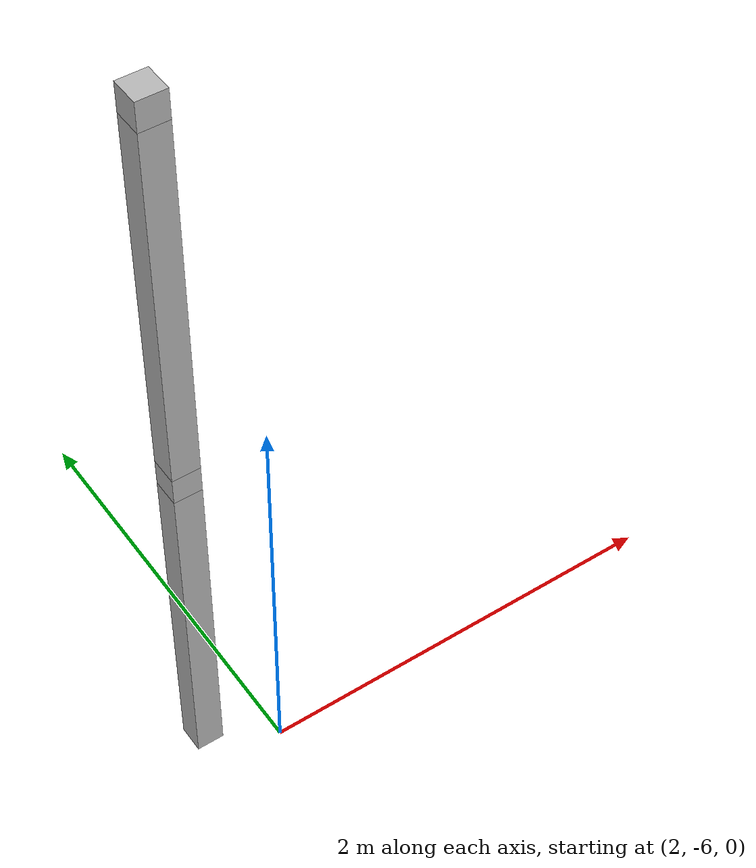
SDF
<sdf version="1.7">
 <world name="default">
  <model name="orthogonal_747_2.000.15_TS">
   <static>1</static>
   <link name="u_link_1_0_4">
    <inertial>
     <mass>1</mass>
     <inertia>
      <ixx>0.166667</ixx>
      <ixy>0</ixy>
      <ixz>0</ixz>
      <iyy>0.166667</iyy>
      <iyz>0</iyz>
      <izz>0.166667</izz>
     </inertia>
    </inertial>
    <pose>8.6 0 3.225 0 -0 0</pose>
    <visual name="visual_0">
     <laser_retro>876</laser_retro>
     <geometry><box><size>0.15 1e-06 0.15</size></box></geometry>
     <material>
      <script><name>Gazebo/Grey</name><uri>file://media/materials/scripts/gazebo.material</uri></script>
      <shader type="pixel"><normal_map>__default__</normal_map></shader>
      <ambient>0.678 0.498 0.659 1</ambient>
      <diffuse>0.7 0.7 0.7 1</diffuse>
      <specular>0.01 0.01 0.01 1</specular>
      <emissive>0 0 0 1</emissive>
     </material>
     <pose>0 -0.075 0 0 -0 0</pose>
     <transparency>1</transparency>
    </visual>
    <visual name="visual_1">
     <laser_retro>877</laser_retro>
     <geometry><box><size>0.15 1e-06 0.15</size></box></geometry>
     <material>
      <script><name>Gazebo/Grey</name><uri>file://media/materials/scripts/gazebo.material</uri></script>
      <shader type="pixel"><normal_map>__default__</normal_map></shader>
      <ambient>0.447 0.624 0.812 1</ambient>
      <diffuse>0.7 0.7 0.7 1</diffuse>
      <specular>0.01 0.01 0.01 1</specular>
      <emissive>0 0 0 1</emissive>
     </material>
     <pose>0 0.075 0 0 -0 0</pose>
     <transparency>1</transparency>
    </visual>
    <visual name="visual_2">
     <laser_retro>878</laser_retro>
     <geometry><box><size>0.15 0.15 1e-06</size></box></geometry>
     <material>
      <script><name>Gazebo/Grey</name><uri>file://media/materials/scripts/gazebo.material</uri></script>
      <shader type="pixel"><normal_map>__default__</normal_map></shader>
      <ambient>0.988 0.686 0.243 1</ambient>
      <diffuse>0.7 0.7 0.7 1</diffuse>
      <specular>0.01 0.01 0.01 1</specular>
      <emissive>0 0 0 1</emissive>
     </material>
     <pose>0 0 -0.075 0 -0 0</pose>
     <transparency>1</transparency>
    </visual>
    <visual name="visual_3">
     <laser_retro>879</laser_retro>
     <geometry><box><size>1e-06 0.15 0.15</size></box></geometry>
     <material>
      <script><name>Gazebo/Grey</name><uri>file://media/materials/scripts/gazebo.material</uri></script>
      <shader type="pixel"><normal_map>__default__</normal_map></shader>
      <ambient>0.988 0.914 0.31 1</ambient>
      <diffuse>0.7 0.7 0.7 1</diffuse>
      <specular>0.01 0.01 0.01 1</specular>
      <emissive>0 0 0 1</emissive>
     </material>
     <pose>0.075 0 0 0 -0 0</pose>
     <transparency>1</transparency>
    </visual>
    <visual name="visual_4">
     <laser_retro>880</laser_retro>
     <geometry><box><size>0.15 0.15 1e-06</size></box></geometry>
     <material>
      <script><name>Gazebo/Grey</name><uri>file://media/materials/scripts/gazebo.material</uri></script>
      <shader type="pixel"><normal_map>__default__</normal_map></shader>
      <ambient>0.937 0.161 0.161 1</ambient>
      <diffuse>0.7 0.7 0.7 1</diffuse>
      <specular>0.01 0.01 0.01 1</specular>
      <emissive>0 0 0 1</emissive>
     </material>
     <pose>0 0 0.075 0 -0 0</pose>
     <transparency>1</transparency>
    </visual>
    <visual name="visual_5">
     <laser_retro>881</laser_retro>
     <geometry><box><size>1e-06 0.15 0.15</size></box></geometry>
     <material>
      <script><name>Gazebo/Grey</name><uri>file://media/materials/scripts/gazebo.material</uri></script>
      <shader type="pixel"><normal_map>__default__</normal_map></shader>
      <ambient>0.541 0.886 0.204 1</ambient>
      <diffuse>0.7 0.7 0.7 1</diffuse>
      <specular>0.01 0.01 0.01 1</specular>
      <emissive>0 0 0 1</emissive>
     </material>
     <pose>-0.075 0 0 0 -0 0</pose>
     <transparency>1</transparency>
    </visual>
    <visual name="visual_texture">
     <geometry><box><size>0.149985 0.149985 0.149985</size></box></geometry>
     <material>
      <script>
       <uri>model://BASE_MODELS/simple_block_v2_textured/materials/scripts</uri>
       <uri>model://BASE_MODELS/simple_block_v2_textured/materials/textures</uri>
       <name>metal</name>
      </script>
     </material>
     <laser_retro>882</laser_retro>
    </visual>
    <collision name="collision">
     <geometry><box><size>0.15 0.15 0.15</size></box></geometry>
     <surface>
      <friction>
       <ode><mu>1</mu><mu2>1</mu2><fdir1>0 0 0</fdir1><slip1>0</slip1><slip2>0</slip2></ode>
       <torsional>
        <coefficient>1</coefficient>
        <patch_radius>0</patch_radius>
        <surface_radius>0</surface_radius>
        <use_patch_radius>1</use_patch_radius>
        <ode><slip>0</slip></ode>
       </torsional>
      </friction>
      <bounce><restitution_coefficient>0</restitution_coefficient><threshold>1e+06</threshold></bounce>
      <contact>
       <collide_without_contact>0</collide_without_contact>
       <collide_without_contact_bitmask>1</collide_without_contact_bitmask>
       <collide_bitmask>1</collide_bitmask>
       <ode>
        <soft_cfm>0</soft_cfm>
        <soft_erp>0.2</soft_erp>
        <kp>1e+13</kp>
        <kd>1</kd>
        <max_vel>0.01</max_vel>
        <min_depth>0</min_depth>
       </ode>
       <bullet>
        <split_impulse>1</split_impulse>
        <split_impulse_penetration_threshold>-0.01</split_impulse_penetration_threshold>
        <soft_cfm>0</soft_cfm>
        <soft_erp>0.2</soft_erp>
        <kp>1e+13</kp>
        <kd>1</kd>
       </bullet>
      </contact>
     </surface>
    </collision>
   </link>
   <link name="z_link_1_0_4">
    <inertial>
     <mass>1</mass>
     <inertia>
      <ixx>0.166667</ixx>
      <ixy>0</ixy>
      <ixz>0</ixz>
      <iyy>0.166667</iyy>
      <iyz>0</iyz>
      <izz>0.166667</izz>
     </inertia>
    </inertial>
    <pose>8.6 0 2.15 0 -0 0</pose>
    <visual name="visual_0">
     <laser_retro>883</laser_retro>
     <geometry><box><size>0.15 1e-06 2</size></box></geometry>
     <material>
      <script><name>Gazebo/Grey</name><uri>file://media/materials/scripts/gazebo.material</uri></script>
      <shader type="pixel"><normal_map>__default__</normal_map></shader>
      <ambient>0.678 0.498 0.659 1</ambient>
      <diffuse>0.7 0.7 0.7 1</diffuse>
      <specular>0.01 0.01 0.01 1</specular>
      <emissive>0 0 0 1</emissive>
     </material>
     <pose>0 -0.075 0 0 -0 0</pose>
     <transparency>1</transparency>
    </visual>
    <visual name="visual_1">
     <laser_retro>884</laser_retro>
     <geometry><box><size>0.15 1e-06 2</size></box></geometry>
     <material>
      <script><name>Gazebo/Grey</name><uri>file://media/materials/scripts/gazebo.material</uri></script>
      <shader type="pixel"><normal_map>__default__</normal_map></shader>
      <ambient>0.447 0.624 0.812 1</ambient>
      <diffuse>0.7 0.7 0.7 1</diffuse>
      <specular>0.01 0.01 0.01 1</specular>
      <emissive>0 0 0 1</emissive>
     </material>
     <pose>0 0.075 0 0 -0 0</pose>
     <transparency>1</transparency>
    </visual>
    <visual name="visual_2">
     <laser_retro>885</laser_retro>
     <geometry><box><size>0.15 0.15 1e-06</size></box></geometry>
     <material>
      <script><name>Gazebo/Grey</name><uri>file://media/materials/scripts/gazebo.material</uri></script>
      <shader type="pixel"><normal_map>__default__</normal_map></shader>
      <ambient>0.988 0.686 0.243 1</ambient>
      <diffuse>0.7 0.7 0.7 1</diffuse>
      <specular>0.01 0.01 0.01 1</specular>
      <emissive>0 0 0 1</emissive>
     </material>
     <pose>0 0 -1 0 -0 0</pose>
     <transparency>1</transparency>
    </visual>
    <visual name="visual_3">
     <laser_retro>886</laser_retro>
     <geometry><box><size>1e-06 0.15 2</size></box></geometry>
     <material>
      <script><name>Gazebo/Grey</name><uri>file://media/materials/scripts/gazebo.material</uri></script>
      <shader type="pixel"><normal_map>__default__</normal_map></shader>
      <ambient>0.988 0.914 0.31 1</ambient>
      <diffuse>0.7 0.7 0.7 1</diffuse>
      <specular>0.01 0.01 0.01 1</specular>
      <emissive>0 0 0 1</emissive>
     </material>
     <pose>0.075 0 0 0 -0 0</pose>
     <transparency>1</transparency>
    </visual>
    <visual name="visual_4">
     <laser_retro>887</laser_retro>
     <geometry><box><size>0.15 0.15 1e-06</size></box></geometry>
     <material>
      <script><name>Gazebo/Grey</name><uri>file://media/materials/scripts/gazebo.material</uri></script>
      <shader type="pixel"><normal_map>__default__</normal_map></shader>
      <ambient>0.937 0.161 0.161 1</ambient>
      <diffuse>0.7 0.7 0.7 1</diffuse>
      <specular>0.01 0.01 0.01 1</specular>
      <emissive>0 0 0 1</emissive>
     </material>
     <pose>0 0 1 0 -0 0</pose>
     <transparency>1</transparency>
    </visual>
    <visual name="visual_5">
     <laser_retro>888</laser_retro>
     <geometry><box><size>1e-06 0.15 2</size></box></geometry>
     <material>
      <script><name>Gazebo/Grey</name><uri>file://media/materials/scripts/gazebo.material</uri></script>
      <shader type="pixel"><normal_map>__default__</normal_map></shader>
      <ambient>0.541 0.886 0.204 1</ambient>
      <diffuse>0.7 0.7 0.7 1</diffuse>
      <specular>0.01 0.01 0.01 1</specular>
      <emissive>0 0 0 1</emissive>
     </material>
     <pose>-0.075 0 0 0 -0 0</pose>
     <transparency>1</transparency>
    </visual>
    <visual name="visual_texture">
     <geometry><box><size>0.149985 0.149985 1.9998</size></box></geometry>
     <material>
      <script>
       <uri>model://BASE_MODELS/simple_block_v2_textured/materials/scripts</uri>
       <uri>model://BASE_MODELS/simple_block_v2_textured/materials/textures</uri>
       <name>metal</name>
      </script>
     </material>
     <laser_retro>889</laser_retro>
    </visual>
    <collision name="collision">
     <geometry><box><size>0.15 0.15 2</size></box></geometry>
     <surface>
      <friction>
       <ode><mu>1</mu><mu2>1</mu2><fdir1>0 0 0</fdir1><slip1>0</slip1><slip2>0</slip2></ode>
       <torsional>
        <coefficient>1</coefficient>
        <patch_radius>0</patch_radius>
        <surface_radius>0</surface_radius>
        <use_patch_radius>1</use_patch_radius>
        <ode><slip>0</slip></ode>
       </torsional>
      </friction>
      <bounce><restitution_coefficient>0</restitution_coefficient><threshold>1e+06</threshold></bounce>
      <contact>
       <collide_without_contact>0</collide_without_contact>
       <collide_without_contact_bitmask>1</collide_without_contact_bitmask>
       <collide_bitmask>1</collide_bitmask>
       <ode>
        <soft_cfm>0</soft_cfm>
        <soft_erp>0.2</soft_erp>
        <kp>1e+13</kp>
        <kd>1</kd>
        <max_vel>0.01</max_vel>
        <min_depth>0</min_depth>
       </ode>
       <bullet>
        <split_impulse>1</split_impulse>
        <split_impulse_penetration_threshold>-0.01</split_impulse_penetration_threshold>
        <soft_cfm>0</soft_cfm>
        <soft_erp>0.2</soft_erp>
        <kp>1e+13</kp>
        <kd>1</kd>
       </bullet>
      </contact>
     </surface>
    </collision>
   </link>
   <link name="u_link_2_0_4">
    <inertial>
     <mass>1</mass>
     <inertia>
      <ixx>0.166667</ixx>
      <ixy>0</ixy>
      <ixz>0</ixz>
      <iyy>0.166667</iyy>
      <iyz>0</iyz>
      <izz>0.166667</izz>
     </inertia>
    </inertial>
    <pose>8.6 0 5.375 0 -0 0</pose>
    <visual name="visual_0">
     <laser_retro>1779</laser_retro>
     <geometry><box><size>0.15 1e-06 0.15</size></box></geometry>
     <material>
      <script><name>Gazebo/Grey</name><uri>file://media/materials/scripts/gazebo.material</uri></script>
      <shader type="pixel"><normal_map>__default__</normal_map></shader>
      <ambient>0.678 0.498 0.659 1</ambient>
      <diffuse>0.7 0.7 0.7 1</diffuse>
      <specular>0.01 0.01 0.01 1</specular>
      <emissive>0 0 0 1</emissive>
     </material>
     <pose>0 -0.075 0 0 -0 0</pose>
     <transparency>1</transparency>
    </visual>
    <visual name="visual_1">
     <laser_retro>1780</laser_retro>
     <geometry><box><size>0.15 1e-06 0.15</size></box></geometry>
     <material>
      <script><name>Gazebo/Grey</name><uri>file://media/materials/scripts/gazebo.material</uri></script>
      <shader type="pixel"><normal_map>__default__</normal_map></shader>
      <ambient>0.447 0.624 0.812 1</ambient>
      <diffuse>0.7 0.7 0.7 1</diffuse>
      <specular>0.01 0.01 0.01 1</specular>
      <emissive>0 0 0 1</emissive>
     </material>
     <pose>0 0.075 0 0 -0 0</pose>
     <transparency>1</transparency>
    </visual>
    <visual name="visual_2">
     <laser_retro>1781</laser_retro>
     <geometry><box><size>0.15 0.15 1e-06</size></box></geometry>
     <material>
      <script><name>Gazebo/Grey</name><uri>file://media/materials/scripts/gazebo.material</uri></script>
      <shader type="pixel"><normal_map>__default__</normal_map></shader>
      <ambient>0.988 0.686 0.243 1</ambient>
      <diffuse>0.7 0.7 0.7 1</diffuse>
      <specular>0.01 0.01 0.01 1</specular>
      <emissive>0 0 0 1</emissive>
     </material>
     <pose>0 0 -0.075 0 -0 0</pose>
     <transparency>1</transparency>
    </visual>
    <visual name="visual_3">
     <laser_retro>1782</laser_retro>
     <geometry><box><size>1e-06 0.15 0.15</size></box></geometry>
     <material>
      <script><name>Gazebo/Grey</name><uri>file://media/materials/scripts/gazebo.material</uri></script>
      <shader type="pixel"><normal_map>__default__</normal_map></shader>
      <ambient>0.988 0.914 0.31 1</ambient>
      <diffuse>0.7 0.7 0.7 1</diffuse>
      <specular>0.01 0.01 0.01 1</specular>
      <emissive>0 0 0 1</emissive>
     </material>
     <pose>0.075 0 0 0 -0 0</pose>
     <transparency>1</transparency>
    </visual>
    <visual name="visual_4">
     <laser_retro>1783</laser_retro>
     <geometry><box><size>0.15 0.15 1e-06</size></box></geometry>
     <material>
      <script><name>Gazebo/Grey</name><uri>file://media/materials/scripts/gazebo.material</uri></script>
      <shader type="pixel"><normal_map>__default__</normal_map></shader>
      <ambient>0.937 0.161 0.161 1</ambient>
      <diffuse>0.7 0.7 0.7 1</diffuse>
      <specular>0.01 0.01 0.01 1</specular>
      <emissive>0 0 0 1</emissive>
     </material>
     <pose>0 0 0.075 0 -0 0</pose>
     <transparency>1</transparency>
    </visual>
    <visual name="visual_5">
     <laser_retro>1784</laser_retro>
     <geometry><box><size>1e-06 0.15 0.15</size></box></geometry>
     <material>
      <script><name>Gazebo/Grey</name><uri>file://media/materials/scripts/gazebo.material</uri></script>
      <shader type="pixel"><normal_map>__default__</normal_map></shader>
      <ambient>0.541 0.886 0.204 1</ambient>
      <diffuse>0.7 0.7 0.7 1</diffuse>
      <specular>0.01 0.01 0.01 1</specular>
      <emissive>0 0 0 1</emissive>
     </material>
     <pose>-0.075 0 0 0 -0 0</pose>
     <transparency>1</transparency>
    </visual>
    <visual name="visual_texture">
     <geometry><box><size>0.149985 0.149985 0.149985</size></box></geometry>
     <material>
      <script>
       <uri>model://BASE_MODELS/simple_block_v2_textured/materials/scripts</uri>
       <uri>model://BASE_MODELS/simple_block_v2_textured/materials/textures</uri>
       <name>metal</name>
      </script>
     </material>
     <laser_retro>1785</laser_retro>
    </visual>
    <collision name="collision">
     <geometry><box><size>0.15 0.15 0.15</size></box></geometry>
     <surface>
      <friction>
       <ode><mu>1</mu><mu2>1</mu2><fdir1>0 0 0</fdir1><slip1>0</slip1><slip2>0</slip2></ode>
       <torsional>
        <coefficient>1</coefficient>
        <patch_radius>0</patch_radius>
        <surface_radius>0</surface_radius>
        <use_patch_radius>1</use_patch_radius>
        <ode><slip>0</slip></ode>
       </torsional>
      </friction>
      <bounce><restitution_coefficient>0</restitution_coefficient><threshold>1e+06</threshold></bounce>
      <contact>
       <collide_without_contact>0</collide_without_contact>
       <collide_without_contact_bitmask>1</collide_without_contact_bitmask>
       <collide_bitmask>1</collide_bitmask>
       <ode>
        <soft_cfm>0</soft_cfm>
        <soft_erp>0.2</soft_erp>
        <kp>1e+13</kp>
        <kd>1</kd>
        <max_vel>0.01</max_vel>
        <min_depth>0</min_depth>
       </ode>
       <bullet>
        <split_impulse>1</split_impulse>
        <split_impulse_penetration_threshold>-0.01</split_impulse_penetration_threshold>
        <soft_cfm>0</soft_cfm>
        <soft_erp>0.2</soft_erp>
        <kp>1e+13</kp>
        <kd>1</kd>
       </bullet>
      </contact>
     </surface>
    </collision>
   </link>
   <link name="z_link_2_0_4">
    <inertial>
     <mass>1</mass>
     <inertia>
      <ixx>0.166667</ixx>
      <ixy>0</ixy>
      <ixz>0</ixz>
      <iyy>0.166667</iyy>
      <iyz>0</iyz>
      <izz>0.166667</izz>
     </inertia>
    </inertial>
    <pose>8.6 0 4.3 0 -0 0</pose>
    <visual name="visual_0">
     <laser_retro>1786</laser_retro>
     <geometry><box><size>0.15 1e-06 2</size></box></geometry>
     <material>
      <script><name>Gazebo/Grey</name><uri>file://media/materials/scripts/gazebo.material</uri></script>
      <shader type="pixel"><normal_map>__default__</normal_map></shader>
      <ambient>0.678 0.498 0.659 1</ambient>
      <diffuse>0.7 0.7 0.7 1</diffuse>
      <specular>0.01 0.01 0.01 1</specular>
      <emissive>0 0 0 1</emissive>
     </material>
     <pose>0 -0.075 0 0 -0 0</pose>
     <transparency>1</transparency>
    </visual>
    <visual name="visual_1">
     <laser_retro>1787</laser_retro>
     <geometry><box><size>0.15 1e-06 2</size></box></geometry>
     <material>
      <script><name>Gazebo/Grey</name><uri>file://media/materials/scripts/gazebo.material</uri></script>
      <shader type="pixel"><normal_map>__default__</normal_map></shader>
      <ambient>0.447 0.624 0.812 1</ambient>
      <diffuse>0.7 0.7 0.7 1</diffuse>
      <specular>0.01 0.01 0.01 1</specular>
      <emissive>0 0 0 1</emissive>
     </material>
     <pose>0 0.075 0 0 -0 0</pose>
     <transparency>1</transparency>
    </visual>
    <visual name="visual_2">
     <laser_retro>1788</laser_retro>
     <geometry><box><size>0.15 0.15 1e-06</size></box></geometry>
     <material>
      <script><name>Gazebo/Grey</name><uri>file://media/materials/scripts/gazebo.material</uri></script>
      <shader type="pixel"><normal_map>__default__</normal_map></shader>
      <ambient>0.988 0.686 0.243 1</ambient>
      <diffuse>0.7 0.7 0.7 1</diffuse>
      <specular>0.01 0.01 0.01 1</specular>
      <emissive>0 0 0 1</emissive>
     </material>
     <pose>0 0 -1 0 -0 0</pose>
     <transparency>1</transparency>
    </visual>
    <visual name="visual_3">
     <laser_retro>1789</laser_retro>
     <geometry><box><size>1e-06 0.15 2</size></box></geometry>
     <material>
      <script><name>Gazebo/Grey</name><uri>file://media/materials/scripts/gazebo.material</uri></script>
      <shader type="pixel"><normal_map>__default__</normal_map></shader>
      <ambient>0.988 0.914 0.31 1</ambient>
      <diffuse>0.7 0.7 0.7 1</diffuse>
      <specular>0.01 0.01 0.01 1</specular>
      <emissive>0 0 0 1</emissive>
     </material>
     <pose>0.075 0 0 0 -0 0</pose>
     <transparency>1</transparency>
    </visual>
    <visual name="visual_4">
     <laser_retro>1790</laser_retro>
     <geometry><box><size>0.15 0.15 1e-06</size></box></geometry>
     <material>
      <script><name>Gazebo/Grey</name><uri>file://media/materials/scripts/gazebo.material</uri></script>
      <shader type="pixel"><normal_map>__default__</normal_map></shader>
      <ambient>0.937 0.161 0.161 1</ambient>
      <diffuse>0.7 0.7 0.7 1</diffuse>
      <specular>0.01 0.01 0.01 1</specular>
      <emissive>0 0 0 1</emissive>
     </material>
     <pose>0 0 1 0 -0 0</pose>
     <transparency>1</transparency>
    </visual>
    <visual name="visual_5">
     <laser_retro>1791</laser_retro>
     <geometry><box><size>1e-06 0.15 2</size></box></geometry>
     <material>
      <script><name>Gazebo/Grey</name><uri>file://media/materials/scripts/gazebo.material</uri></script>
      <shader type="pixel"><normal_map>__default__</normal_map></shader>
      <ambient>0.541 0.886 0.204 1</ambient>
      <diffuse>0.7 0.7 0.7 1</diffuse>
      <specular>0.01 0.01 0.01 1</specular>
      <emissive>0 0 0 1</emissive>
     </material>
     <pose>-0.075 0 0 0 -0 0</pose>
     <transparency>1</transparency>
    </visual>
    <visual name="visual_texture">
     <geometry><box><size>0.149985 0.149985 1.9998</size></box></geometry>
     <material>
      <script>
       <uri>model://BASE_MODELS/simple_block_v2_textured/materials/scripts</uri>
       <uri>model://BASE_MODELS/simple_block_v2_textured/materials/textures</uri>
       <name>metal</name>
      </script>
     </material>
     <laser_retro>1792</laser_retro>
    </visual>
    <collision name="collision">
     <geometry><box><size>0.15 0.15 2</size></box></geometry>
     <surface>
      <friction>
       <ode><mu>1</mu><mu2>1</mu2><fdir1>0 0 0</fdir1><slip1>0</slip1><slip2>0</slip2></ode>
       <torsional>
        <coefficient>1</coefficient>
        <patch_radius>0</patch_radius>
        <surface_radius>0</surface_radius>
        <use_patch_radius>1</use_patch_radius>
        <ode><slip>0</slip></ode>
       </torsional>
      </friction>
      <bounce><restitution_coefficient>0</restitution_coefficient><threshold>1e+06</threshold></bounce>
      <contact>
       <collide_without_contact>0</collide_without_contact>
       <collide_without_contact_bitmask>1</collide_without_contact_bitmask>
       <collide_bitmask>1</collide_bitmask>
       <ode>
        <soft_cfm>0</soft_cfm>
        <soft_erp>0.2</soft_erp>
        <kp>1e+13</kp>
        <kd>1</kd>
        <max_vel>0.01</max_vel>
        <min_depth>0</min_depth>
       </ode>
       <bullet>
        <split_impulse>1</split_impulse>
        <split_impulse_penetration_threshold>-0.01</split_impulse_penetration_threshold>
        <soft_cfm>0</soft_cfm>
        <soft_erp>0.2</soft_erp>
        <kp>1e+13</kp>
        <kd>1</kd>
       </bullet>
      </contact>
     </surface>
    </collision>
   </link>
   <pose>-6.47624 -5 -2.5 0 -0 0</pose>
  </model>
 </world>
</sdf>
